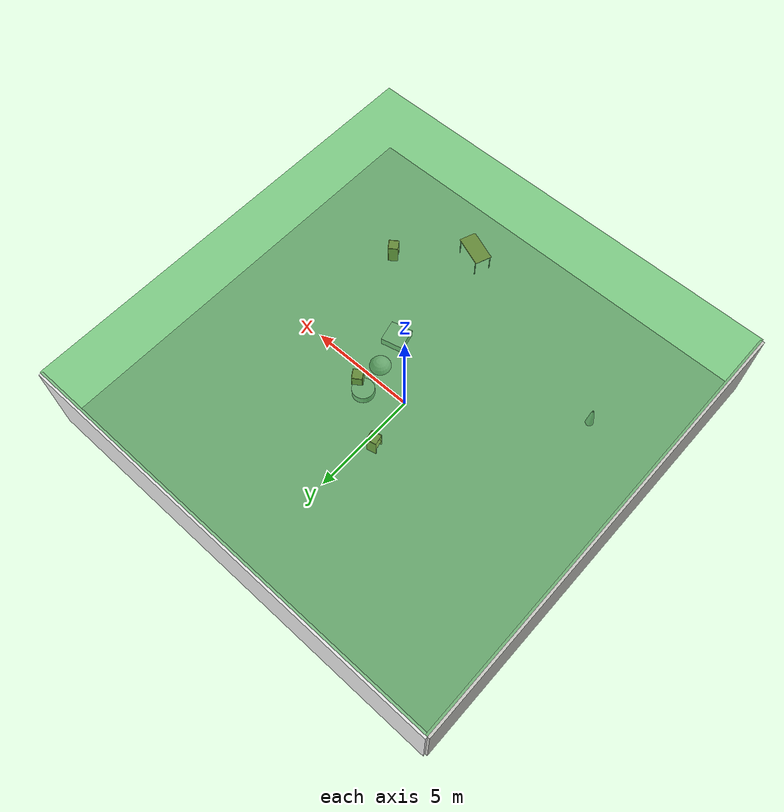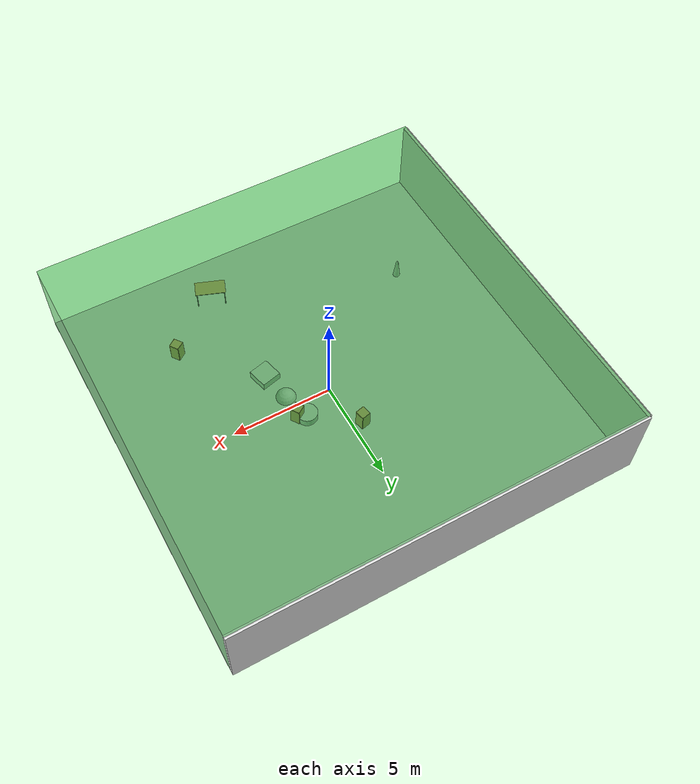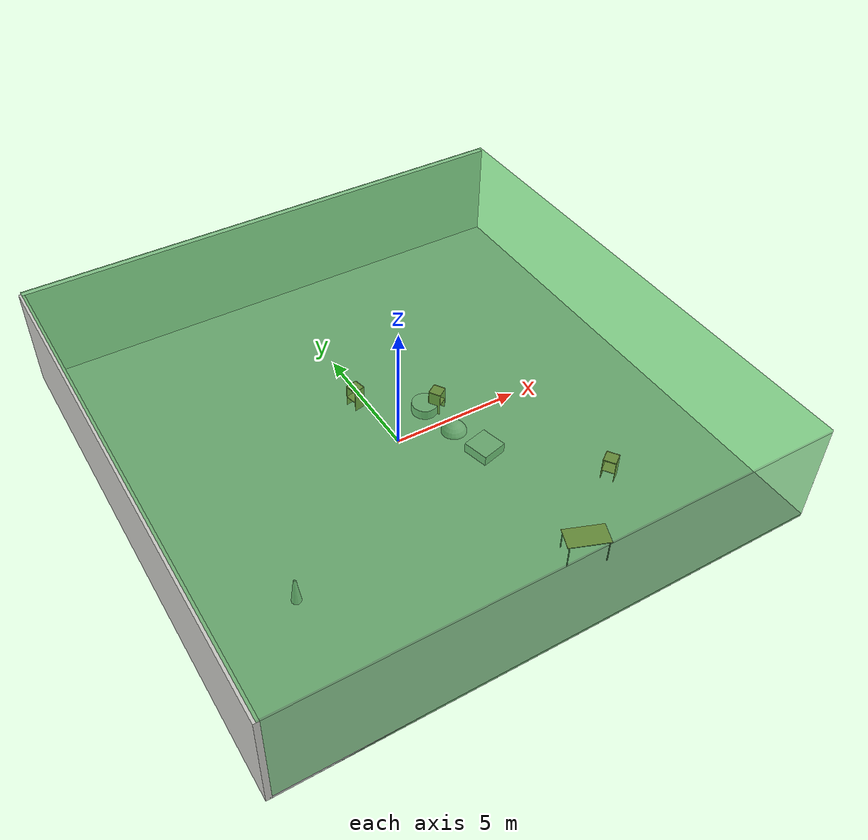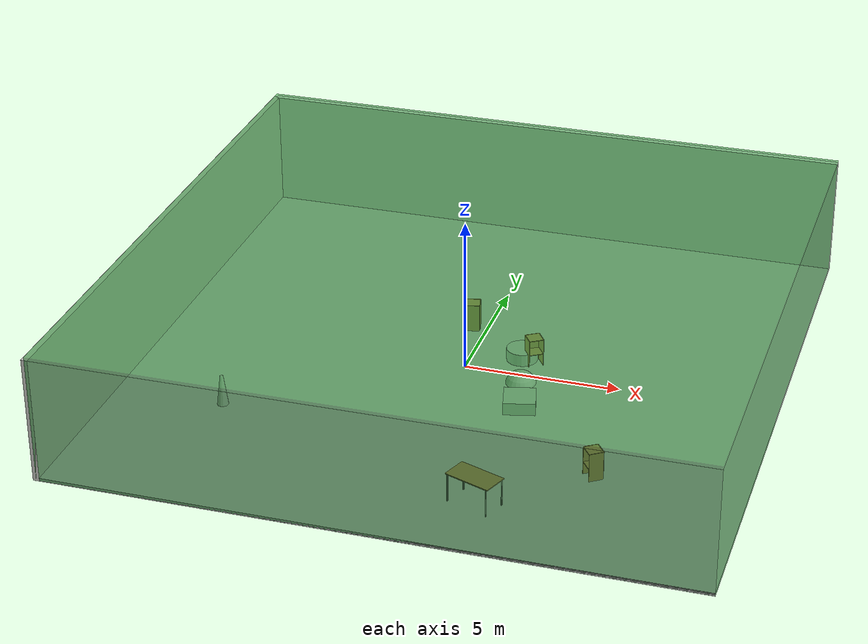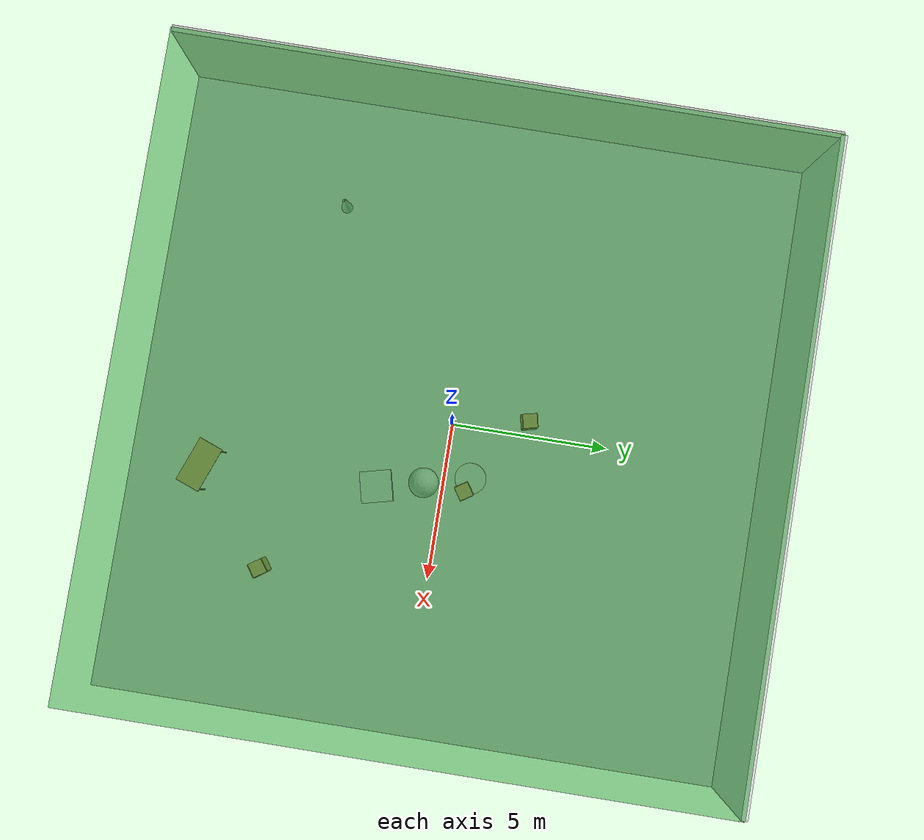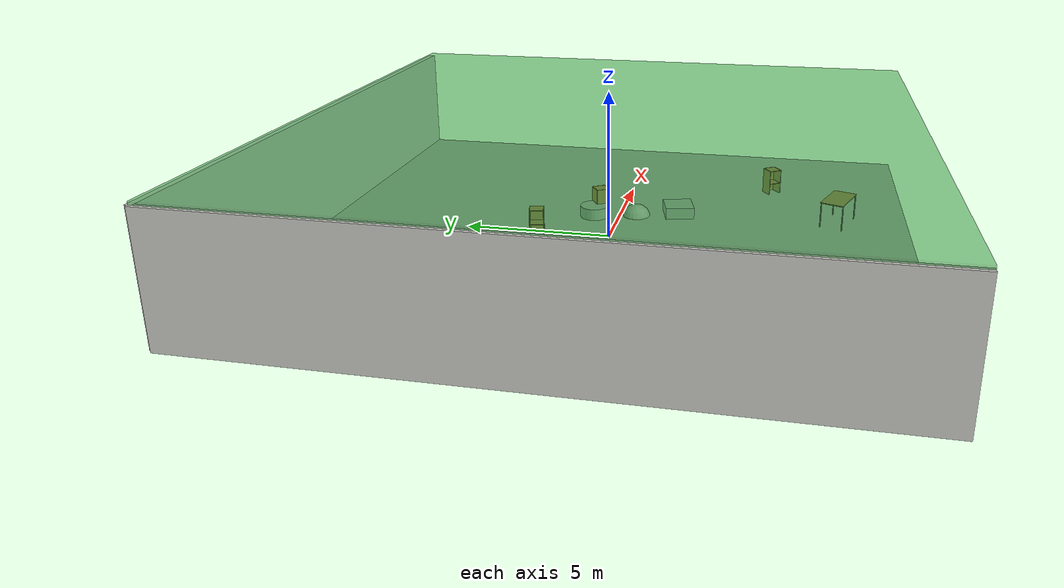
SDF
<sdf version="1.4">
 <world name="default">
  <physics type="ode">
   <max_step_size>0.001</max_step_size>
   <real_time_factor>1</real_time_factor>
   <real_time_update_rate>1000</real_time_update_rate>
   <gravity>0 0 -9.8</gravity>
  </physics>
  <scene><ambient>0.4 0.4 0.4 1</ambient><background>0.7 0.7 0.7 1</background><shadows>1</shadows></scene>
  <model name="Surrounding">
   <static>1</static>
   <link name="Ceiling">
    <collision name="Ceiling_Collision"><geometry><box><size>20 20 0.1</size></box></geometry></collision>
    <visual name="Ceiling_Visual">
     <geometry><box><size>20 20 0.1</size></box></geometry>
     <material>
      <script><uri>file://media/materials/scripts/gazebo.material</uri><name>Gazebo/GreenTransparent</name></script>
     </material>
    </visual>
    <pose>0 0 4.05 0 0 0</pose>
   </link>
   <link name="Wall_South">
    <collision name="Wall_South_Collision">
     <geometry><box><size>20 0 4</size></box></geometry>
     <pose>0 0 2 0 -0 0</pose>
    </collision>
    <visual name="Wall_South_Visual">
     <pose>0 0 2 0 -0 0</pose>
     <geometry><box><size>20 0 4</size></box></geometry>
     <material>
      <script><uri>file://media/materials/scripts/gazebo.material</uri><name>Gazebo/GreenTransparent</name></script>
     </material>
    </visual>
    <velocity_decay><linear>0</linear><angular>0</angular></velocity_decay>
    <pose>0 -10 0 0 -0 0</pose>
   </link>
   <link name="Wall_East">
    <collision name="Wall_21_Collision">
     <geometry><box><size>20 0 4</size></box></geometry>
     <pose>0 0 2 0 -0 0</pose>
    </collision>
    <visual name="Wall_21_Visual">
     <pose>0 0 2 0 -0 0</pose>
     <geometry><box><size>20 0 4</size></box></geometry>
     <material>
      <script><uri>file://media/materials/scripts/gazebo.material</uri><name>Gazebo/GreenTransparent</name></script>
     </material>
    </visual>
    <velocity_decay><linear>0</linear><angular>0</angular></velocity_decay>
    <pose>10 0 0 0 -0 1.5708</pose>
   </link>
   <link name="Wall_North">
    <collision name="Wall_22_Collision">
     <geometry><box><size>20 0.2 4</size></box></geometry>
     <pose>0 0 2 0 -0 0</pose>
    </collision>
    <visual name="Wall_22_Visual">
     <pose>0 0 2 0 -0 0</pose>
     <geometry><box><size>20 0.2 4</size></box></geometry>
     <material>
      <script><uri>file://media/materials/scripts/gazebo.material</uri><name>Gazebo/White</name></script>
     </material>
    </visual>
    <velocity_decay><linear>0</linear><angular>0</angular></velocity_decay>
    <pose>0 10 0 0 -0 0</pose>
   </link>
   <link name="Wall_West">
    <collision name="Wall_23_Collision">
     <geometry><box><size>20 0.2 4</size></box></geometry>
     <pose>0 0 2 0 -0 0</pose>
    </collision>
    <visual name="Wall_23_Visual">
     <pose>0 0 2 0 -0 0</pose>
     <geometry><box><size>20 0.2 4</size></box></geometry>
     <material>
      <script><uri>file://media/materials/scripts/gazebo.material</uri><name>Gazebo/CeilingTiled</name></script>
     </material>
    </visual>
    <velocity_decay><linear>0</linear><angular>0</angular></velocity_decay>
    <pose>-10 0 0 0 0 -1.5708</pose>
   </link>
   <link name="Ground_link">
    <collision name="collision">
     <pose>0 0 .05 0 -0 0</pose>
     <geometry><box><size>20 20 0.1</size></box></geometry>
    </collision>
    <visual name="visual">
     <pose>0 0 .05 0 -0 0</pose>
     <geometry><box><size>20 20 0.1</size></box></geometry>
     <material>
      <script><uri>file://media/materials/scripts/gazebo.material</uri><name>Gazebo/LightOff</name></script>
     </material>
    </visual>
   </link>
   <static>1</static>
  </model>
  <spherical_coordinates>
   <surface_model>EARTH_WGS84</surface_model>
   <latitude_deg>0</latitude_deg>
   <longitude_deg>0</longitude_deg>
   <elevation>0</elevation>
   <heading_deg>0</heading_deg>
  </spherical_coordinates>
  <light name="lightball_0" type="diffuse">
   <diffuse>0.8 0.8 0.8 1</diffuse>
   <specular>0.2 0.2 0.2 1</specular>
   <attenuation>
    <range>100</range>
    <constant>0.7</constant>
    <linear>0.01</linear>
    <quadratic>0.001</quadratic>
   </attenuation>
   <direction>-0.5 0.1 -0.9</direction>
   <pose>-2.92600703008 -8.78764730067 3.63462284583 0 0 0</pose>
  </light>
  <light name="lightball_1" type="diffuse">
   <diffuse>0.8 0.8 0.8 1</diffuse>
   <specular>0.2 0.2 0.2 1</specular>
   <attenuation>
    <range>100</range>
    <constant>0.7</constant>
    <linear>0.01</linear>
    <quadratic>0.001</quadratic>
   </attenuation>
   <direction>-0.5 0.1 -0.9</direction>
   <pose>-7.1326466091 3.1436919109 1.28829117776 0 0 0</pose>
  </light>
  <light name="lightball_2" type="diffuse">
   <diffuse>0.8 0.8 0.8 1</diffuse>
   <specular>0.2 0.2 0.2 1</specular>
   <attenuation>
    <range>100</range>
    <constant>0.7</constant>
    <linear>0.01</linear>
    <quadratic>0.001</quadratic>
   </attenuation>
   <direction>-0.5 0.1 -0.9</direction>
   <pose>-8.95466329566 4.35632538999 2.68747038131 0 0 0</pose>
  </light>
  <light name="lightball_3" type="diffuse">
   <diffuse>0.8 0.8 0.8 1</diffuse>
   <specular>0.2 0.2 0.2 1</specular>
   <attenuation>
    <range>100</range>
    <constant>0.7</constant>
    <linear>0.01</linear>
    <quadratic>0.001</quadratic>
   </attenuation>
   <direction>-0.5 0.1 -0.9</direction>
   <pose>0.63091297926 6.58377997443 0.521769555072 0 0 0</pose>
  </light>
  <light name="lightball_4" type="diffuse">
   <diffuse>0.8 0.8 0.8 1</diffuse>
   <specular>0.2 0.2 0.2 1</specular>
   <attenuation>
    <range>100</range>
    <constant>0.7</constant>
    <linear>0.01</linear>
    <quadratic>0.001</quadratic>
   </attenuation>
   <direction>-0.5 0.1 -0.9</direction>
   <pose>4.59796334741 9.72299455713 1.84225422505 0 0 0</pose>
  </light>
  <light name="lightball_5" type="diffuse">
   <diffuse>0.8 0.8 0.8 1</diffuse>
   <specular>0.2 0.2 0.2 1</specular>
   <attenuation>
    <range>100</range>
    <constant>0.7</constant>
    <linear>0.01</linear>
    <quadratic>0.001</quadratic>
   </attenuation>
   <direction>-0.5 0.1 -0.9</direction>
   <pose>-9.98268160704 5.07224441071 1.53379698072 0 0 0</pose>
  </light>
  <light name="lightball_6" type="diffuse">
   <diffuse>0.8 0.8 0.8 1</diffuse>
   <specular>0.2 0.2 0.2 1</specular>
   <attenuation>
    <range>100</range>
    <constant>0.7</constant>
    <linear>0.01</linear>
    <quadratic>0.001</quadratic>
   </attenuation>
   <direction>-0.5 0.1 -0.9</direction>
   <pose>3.7517735082 9.12579949972 0.71975484559 0 0 0</pose>
  </light>
  <light name="lightball_7" type="diffuse">
   <diffuse>0.8 0.8 0.8 1</diffuse>
   <specular>0.2 0.2 0.2 1</specular>
   <attenuation>
    <range>100</range>
    <constant>0.7</constant>
    <linear>0.01</linear>
    <quadratic>0.001</quadratic>
   </attenuation>
   <direction>-0.5 0.1 -0.9</direction>
   <pose>2.24393264826 0.61919595811 0.692512883831 0 0 0</pose>
  </light>
  <light name="lightball_8" type="diffuse">
   <diffuse>0.8 0.8 0.8 1</diffuse>
   <specular>0.2 0.2 0.2 1</specular>
   <attenuation>
    <range>100</range>
    <constant>0.7</constant>
    <linear>0.01</linear>
    <quadratic>0.001</quadratic>
   </attenuation>
   <direction>-0.5 0.1 -0.9</direction>
   <pose>-0.961354763604 8.51704645281 3.71051978283 0 0 0</pose>
  </light>
  <include>
   <uri>model://construction_cone</uri>
   <pose>-6.39953076653 -4.50491504747 0 0 0 0.494662585971</pose>
  </include>
  <include><uri>model://cabinet</uri><pose>-0.453033401161 2.3888634341 0 0 0 0.225071636763</pose></include>
  <include><uri>model://table</uri><pose>2.55965567947 -7.61721384247 0 0 0 2.78196028615</pose></include>
  <include>
   <uri>model://textured_shapes</uri>
   <pose>1.99332780009 -0.618322686914 0 0 0 0.24228823041</pose>
  </include>
  <include><uri>model://cabinet</uri><pose>2.06601737419 0.688050245546 0 0 0 2.15234407402</pose></include>
  <include><uri>model://cabinet</uri><pose>5.44976008205 -5.27769183515 0 0 0 0.618978460183</pose></include>
 </world>
</sdf>

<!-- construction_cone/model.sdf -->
<sdf version="1.5">
  <model name="Construction Cone">
    <link name="link">
      <collision name="collision">
        <geometry>
          <mesh>
            <scale>10 10 10</scale>
            <uri>file://isr-testbed/construction_cone/meshes/construction_cone.dae</uri>
          </mesh>
        </geometry>
      </collision>
      <visual name="visual">
        <geometry>
          <mesh>
            <scale>10 10 10</scale>
            <uri>file://isr-testbed/construction_cone/meshes/construction_cone.dae</uri>
          </mesh>
        </geometry>
      </visual>
    </link>
  </model>
</sdf>

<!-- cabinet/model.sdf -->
<sdf version="1.5">
  <model name="cabinet">
    <static>true</static>
    <link name="cabinet_bottom_plate">
      <inertial>
        <pose>0 0 -1 0 0 0</pose>
        <inertia>
          <ixx>2.050000</ixx>
          <ixy>0</ixy>
          <ixz>0</ixz>
          <iyy>2.050000</iyy>
          <iyz>0</iyz>
          <izz>2.050000</izz>
        </inertia>
        <mass>25.000000</mass>
      </inertial>
      <collision name="cabinet_bottom_plate_geom">
        <pose>0 0 0.010000 0 0 0</pose>
        <geometry>
          <box>
            <size>0.450000 0.450000 0.020000</size>
          </box>
        </geometry>
      </collision>
      <visual name="cabinet_bottom_plate_geom_visual">
        <pose>0 0 0.010000 0 0 0</pose>
        <geometry>
          <box>
            <size>0.450000 0.450000 0.020000</size>
          </box>
        </geometry>
        <material>
          <script>
            <uri>model://media/materials/scripts/gazebo.material</uri>
            <name>Gazebo/Wood</name>
          </script>
        </material>
      </visual>
      <collision name="cabinet_bottom_plate_geom_cabinet_back_plate">
        <pose>0.235000 0 0.510000 0 0 0</pose>
        <geometry>
          <box>
            <size>0.020000 0.450000 1.020000</size>
          </box>
        </geometry>
      </collision>
      <visual name="cabinet_bottom_plate_geom_cabinet_back_plate_visual">
        <pose>0.235000 0 0.510000 0 0 0</pose>
        <geometry>
          <box>
            <size>0.020000 0.450000 1.020000</size>
          </box>
        </geometry>
        <material>
          <script>
            <uri>model://media/materials/scripts/gazebo.material</uri>
            <name>Gazebo/Wood</name>
          </script>
        </material>
      </visual>
      <collision name="cabinet_bottom_plate_geom_cabinet_left_plate">
        <pose>0 0.235000 0.510000 0 0 0</pose>
        <geometry>
          <box>
            <size>0.450000 0.020000 1.020000</size>
          </box>
        </geometry>
      </collision>
      <visual name="cabinet_bottom_plate_geom_cabinet_left_plate_visual">
        <pose>0 0.235000 0.510000 0 0 0</pose>
        <geometry>
          <box>
            <size>0.450000 0.020000 1.020000</size>
          </box>
        </geometry>
        <material>
          <script>
            <uri>model://media/materials/scripts/gazebo.material</uri>
            <name>Gazebo/Wood</name>
          </script>
        </material>
      </visual>
      <collision name="cabinet_bottom_plate_geom_cabinet_middle_plate">
        <pose>0 0 0.510000 0 0 0</pose>
        <geometry>
          <box>
            <size>0.450000 0.450000 0.020000</size>
          </box>
        </geometry>
      </collision>
      <visual name="cabinet_bottom_plate_geom_cabinet_middle_plate_visual">
        <pose>0 0 0.510000 0 0 0</pose>
        <geometry>
          <box>
            <size>0.450000 0.450000 0.020000</size>
          </box>
        </geometry>
        <material>
          <script>
            <uri>model://media/materials/scripts/gazebo.material</uri>
            <name>Gazebo/Wood</name>
          </script>
        </material>
      </visual>
      <collision name="cabinet_bottom_plate_geom_cabinet_right_plate">
        <pose>0 -0.235000 0.510000 0 0 0</pose>
        <geometry>
          <box>
            <size>0.450000 0.020000 1.020000</size>
          </box>
        </geometry>
      </collision>
      <visual name="cabinet_bottom_plate_geom_cabinet_right_plate_visual">
        <pose>0 -0.235000 0.510000 0 0 0</pose>
        <geometry>
          <box>
            <size>0.450000 0.020000 1.020000</size>
          </box>
        </geometry>
        <material>
          <script>
            <uri>model://media/materials/scripts/gazebo.material</uri>
            <name>Gazebo/Wood</name>
          </script>
        </material>
      </visual>
      <collision name="cabinet_bottom_plate_geom_cabinet_top_plate">
        <pose>0 0 1.010000 0 0 0</pose>
        <geometry>
          <box>
            <size>0.450000 0.450000 0.020000</size>
          </box>
        </geometry>
      </collision>
      <visual name="cabinet_bottom_plate_geom_cabinet_top_plate_visual">
        <pose>0 0 1.010000 0 0 0</pose>
        <geometry>
          <box>
            <size>0.450000 0.450000 0.020000</size>
          </box>
        </geometry>
        <material>
          <script>
            <uri>model://media/materials/scripts/gazebo.material</uri>
            <name>Gazebo/Wood</name>
          </script>
        </material>
      </visual>
    </link>
  </model>
</sdf>

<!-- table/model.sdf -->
<sdf version="1.5">
  <model name="table">
    <static>true</static>
    <link name="link">
      <collision name="surface">
        <pose>0 0 1.0 0 0 0</pose>
        <geometry>
          <box>
            <size>1.5 0.8 0.03</size>
          </box>
        </geometry>
        <surface>
          <friction>
            <ode>
              <mu>0.6</mu>
              <mu2>0.6</mu2>
            </ode>
          </friction>
        </surface>
      </collision>
      <visual name="visual1">
        <pose>0 0 1.0 0 0 0</pose>
        <geometry>
          <box>
            <size>1.5 0.8 0.03</size>
          </box>
        </geometry>
        <material>
          <script>
            <uri>model://media/materials/scripts/gazebo.material</uri>
            <name>Gazebo/Wood</name>
          </script>
        </material>
      </visual>
      <collision name="front_left_leg">
        <pose>0.68 0.38 0.5 0 0 0</pose>
        <geometry>
          <cylinder>
            <radius>0.02</radius>
            <length>1.0</length>
          </cylinder>
        </geometry>
      </collision>
      <visual name="front_left_leg">
        <pose>0.68 0.38 0.5 0 0 0</pose>
        <geometry>
          <cylinder>
            <radius>0.02</radius>
            <length>1.0</length>
          </cylinder>
        </geometry>
        <material>
          <script>
            <uri>model://media/materials/scripts/gazebo.material</uri>
            <name>Gazebo/Grey</name>
          </script>
        </material>
      </visual>
      <collision name="front_right_leg">
        <pose>0.68 -0.38 0.5 0 0 0</pose>
        <geometry>
          <cylinder>
            <radius>0.02</radius>
            <length>1.0</length>
          </cylinder>
        </geometry>
      </collision>
      <visual name="front_right_leg">
        <pose>0.68 -0.38 0.5 0 0 0</pose>
        <geometry>
          <cylinder>
            <radius>0.02</radius>
            <length>1.0</length>
          </cylinder>
        </geometry>
        <material>
          <script>
            <uri>model://media/materials/scripts/gazebo.material</uri>
            <name>Gazebo/Grey</name>
          </script>
        </material>
      </visual>
      <collision name="back_right_leg">
        <pose>-0.68 -0.38 0.5 0 0 0</pose>
        <geometry>
          <cylinder>
            <radius>0.02</radius>
            <length>1.0</length>
          </cylinder>
        </geometry>
      </collision>
      <visual name="back_right_leg">
        <pose>-0.68 -0.38 0.5 0 0 0</pose>
        <geometry>
          <cylinder>
            <radius>0.02</radius>
            <length>1.0</length>
          </cylinder>
        </geometry>
        <material>
          <script>
            <uri>model://media/materials/scripts/gazebo.material</uri>
            <name>Gazebo/Grey</name>
          </script>
        </material>
      </visual>
      <collision name="back_left_leg">
        <pose>-0.68 0.38 0.5 0 0 0</pose>
        <geometry>
          <cylinder>
            <radius>0.02</radius>
            <length>1.0</length>
          </cylinder>
        </geometry>
      </collision>
      <visual name="back_left_leg">
        <pose>-0.68 0.38 0.5 0 0 0</pose>
        <geometry>
          <cylinder>
            <radius>0.02</radius>
            <length>1.0</length>
          </cylinder>
        </geometry>
        <material>
          <script>
            <uri>model://media/materials/scripts/gazebo.material</uri>
            <name>Gazebo/Grey</name>
          </script>
        </material>
      </visual>
    </link>
  </model>
</sdf>

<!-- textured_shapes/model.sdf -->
<sdf version="1.6">
  <model name="textured_shapes">
    <pose>0 0 0.5 0 0 0</pose>
    <link name="box">
      <pose>0 -1.5 0 0 0 0</pose>
      <collision name="collision">
        <geometry>
          <box>
            <size>1 1 1</size>
          </box>
        </geometry>
      </collision>
      <visual name="visual">
        <geometry>
          <box>
            <size>1 1 1</size>
          </box>
        </geometry>
        <material>
          <script>
            <uri>model://../model_source/models/textured_shapes/materials/scripts</uri>
            <uri>model://../model_source/models/textured_shapes/materials/textures</uri>
            <name>TexturedShape/Squares</name>
          </script>
        </material>
      </visual>
    </link>
    <link name="sphere">
      <collision name="collision">
        <geometry>
          <sphere>
            <radius>0.5</radius>
          </sphere>
        </geometry>
      </collision>
      <visual name="visual">
        <geometry>
          <sphere>
            <radius>0.5</radius>
          </sphere>
        </geometry>
        <material>
          <script>
            <uri>model://../model_source/models/textured_shapes/materials/scripts</uri>
            <uri>model://../model_source/models/textured_shapes/materials/textures</uri>
            <name>TexturedShape/Squares</name>
          </script>
        </material>
      </visual>
    </link>
    <link name="cylinder">
      <pose>0 1.5 0 0 0 0</pose>
      <collision name="collision">
        <geometry>
          <cylinder>
            <radius>0.5</radius>
            <length>1</length>
          </cylinder>
        </geometry>
      </collision>
      <visual name="visual">
        <geometry>
          <cylinder>
            <radius>0.5</radius>
            <length>1</length>
          </cylinder>
        </geometry>
        <material>
          <script>
            <uri>model://../model_source/models/textured_shapes/materials/scripts</uri>
            <uri>model://../model_source/models/textured_shapes/materials/textures</uri>
            <name>TexturedShape/Squares</name>
          </script>
        </material>
      </visual>
    </link>
  </model>
</sdf>
